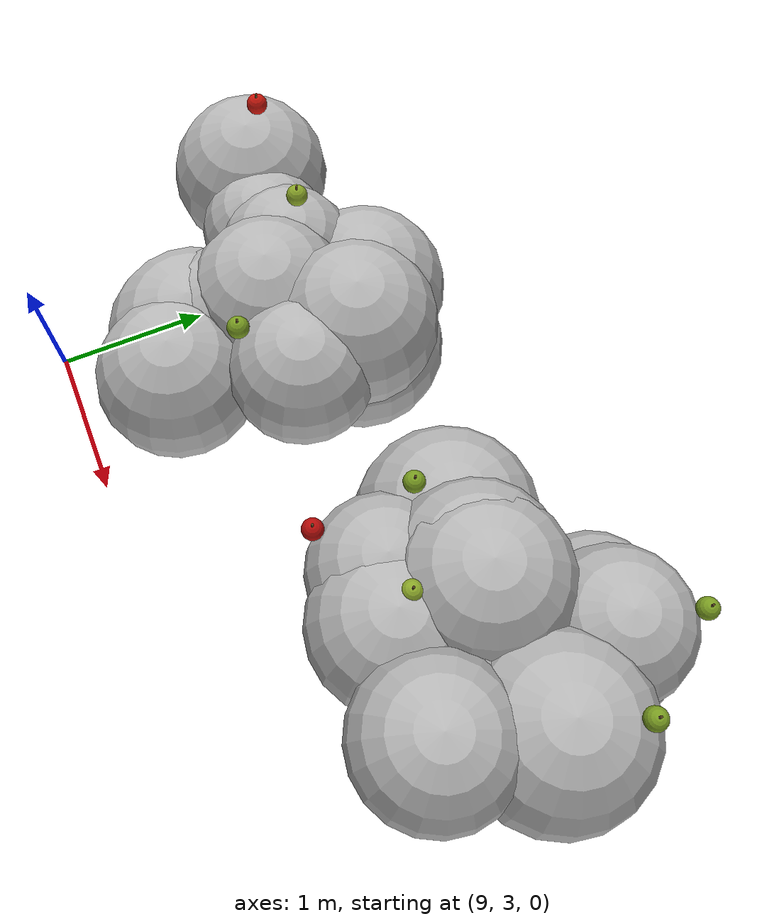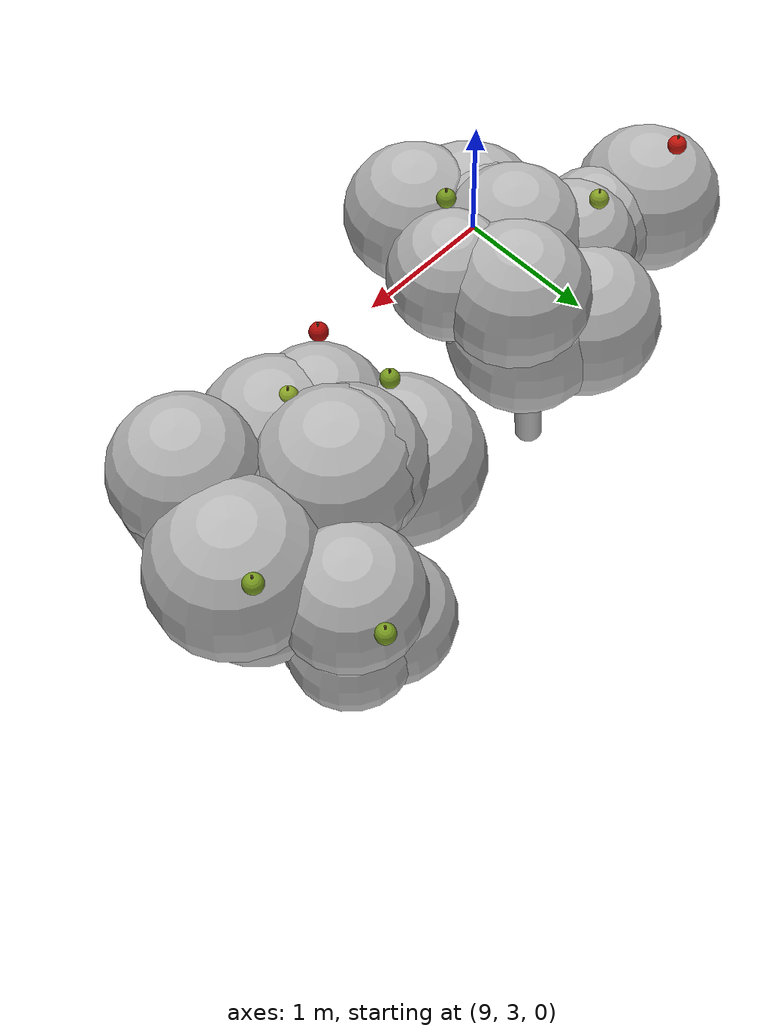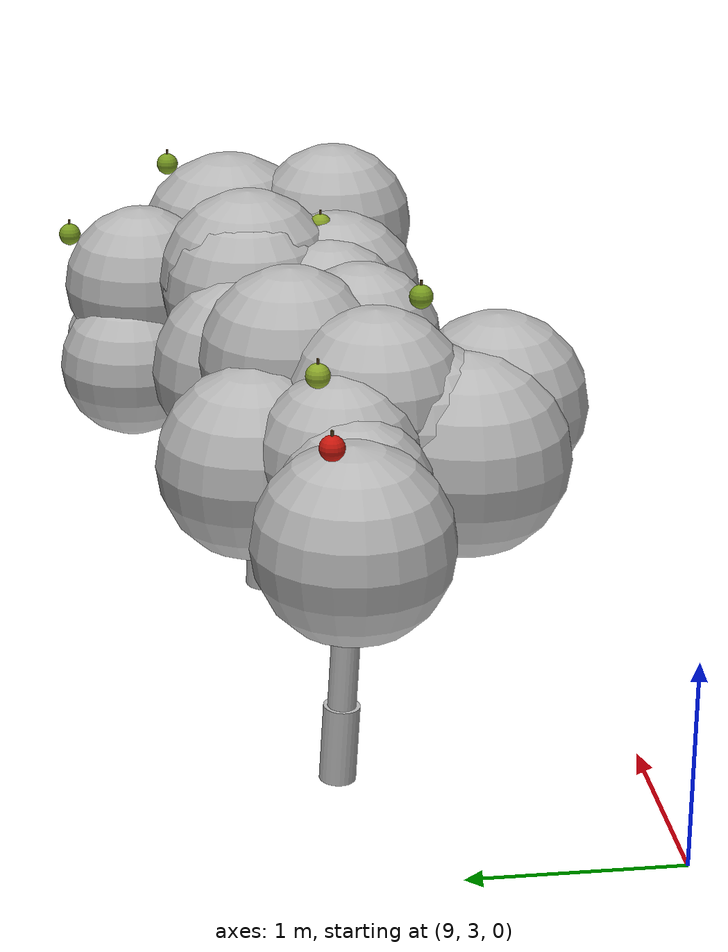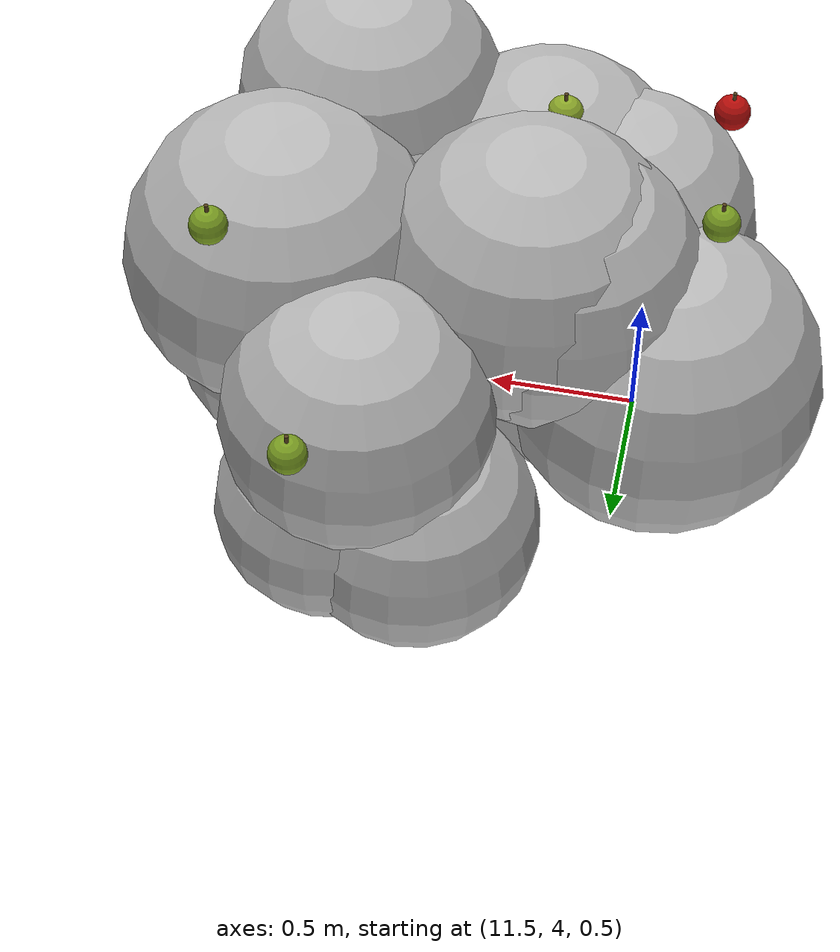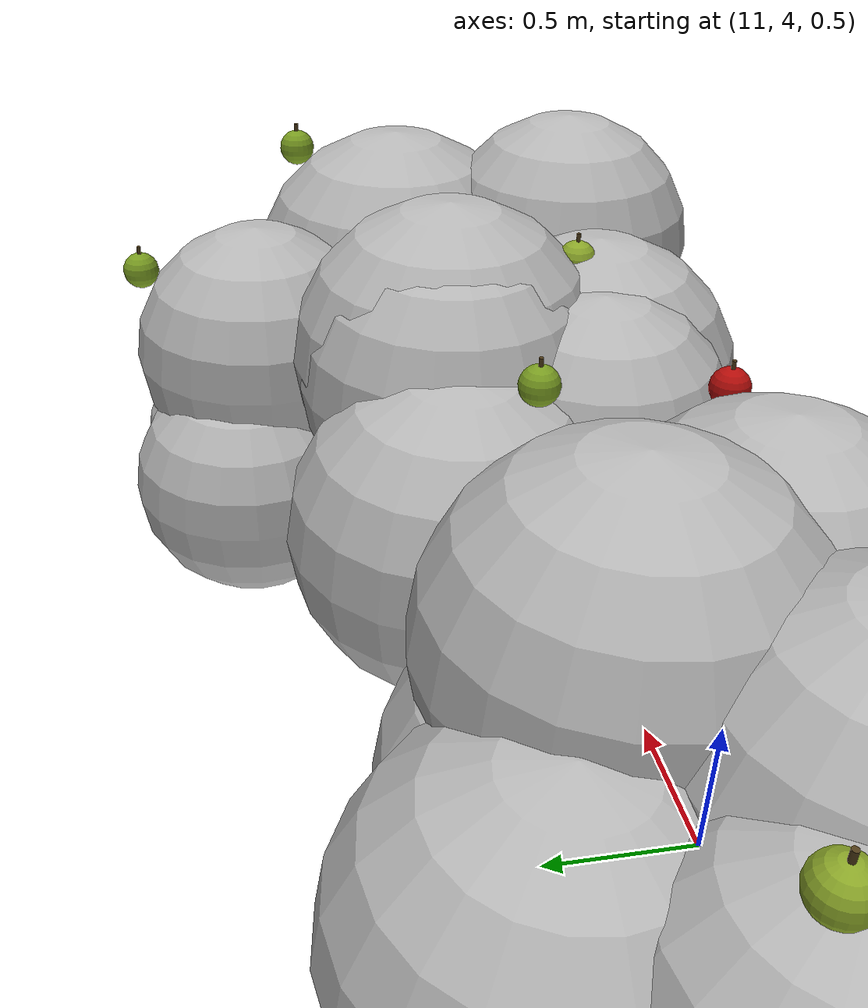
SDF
<sdf version="1.6">
 <world name="default">
  <model name="tree_r4_t12">
   <static>true</static>
   <link name="tree_r4_t12_trunk0">
    <pose>9.9810 4.4279 0.1790 0.0569 0.0055 0</pose>
    <collision name="tree_r4_t12_trunk0_c">
     <geometry><cylinder><radius>0.0867</radius><length>0.3796</length></cylinder></geometry>
    </collision>
    <visual name="tree_r4_t12_trunk0_v">
     <geometry><cylinder><radius>0.0867</radius><length>0.3796</length></cylinder></geometry>
     <material>
      <script>
       <uri>model://orchard/materials/scripts</uri>
       <uri>model://orchard/materials/textures</uri>
       <name>Orchard/Bark</name>
      </script>
     </material>
    </visual>
   </link>
   <link name="tree_r4_t12_trunk1">
    <pose>9.9830 4.4075 0.5371 0.0569 0.0055 0</pose>
    <visual name="tree_r4_t12_trunk1_v">
     <geometry><cylinder><radius>0.0676</radius><length>0.3796</length></cylinder></geometry>
     <material>
      <script>
       <uri>model://orchard/materials/scripts</uri>
       <uri>model://orchard/materials/textures</uri>
       <name>Orchard/Bark</name>
      </script>
     </material>
    </visual>
   </link>
   <link name="tree_r4_t12_trunk2">
    <pose>9.9850 4.3871 0.8952 0.0569 0.0055 0</pose>
    <visual name="tree_r4_t12_trunk2_v">
     <geometry><cylinder><radius>0.0485</radius><length>0.3796</length></cylinder></geometry>
     <material>
      <script>
       <uri>model://orchard/materials/scripts</uri>
       <uri>model://orchard/materials/textures</uri>
       <name>Orchard/Bark</name>
      </script>
     </material>
    </visual>
   </link>
   <link name="tree_r4_t12_br0">
    <pose>10.2596 4.4023 1.3676 0.0000 0.7527 0.0925</pose>
    <visual name="tree_r4_t12_br0_v">
     <geometry><cylinder><radius>0.0308</radius><length>0.8038</length></cylinder></geometry>
     <material>
      <script>
       <uri>model://orchard/materials/scripts</uri>
       <uri>model://orchard/materials/textures</uri>
       <name>Orchard/Bark</name>
      </script>
     </material>
    </visual>
   </link>
   <link name="tree_r4_t12_br1">
    <pose>10.1065 4.5945 1.2824 0.0000 0.8740 1.0651</pose>
    <visual name="tree_r4_t12_br1_v">
     <geometry><cylinder><radius>0.0243</radius><length>0.6485</length></cylinder></geometry>
     <material>
      <script>
       <uri>model://orchard/materials/scripts</uri>
       <uri>model://orchard/materials/textures</uri>
       <name>Orchard/Bark</name>
      </script>
     </material>
    </visual>
   </link>
   <link name="tree_r4_t12_br2">
    <pose>9.6588 4.5346 1.2932 0.0000 1.0283 2.6926</pose>
    <visual name="tree_r4_t12_br2_v">
     <geometry><cylinder><radius>0.0272</radius><length>0.8482</length></cylinder></geometry>
     <material>
      <script>
       <uri>model://orchard/materials/scripts</uri>
       <uri>model://orchard/materials/textures</uri>
       <name>Orchard/Bark</name>
      </script>
     </material>
    </visual>
   </link>
   <link name="tree_r4_t12_br3">
    <pose>9.8046 4.3219 1.2928 0.0000 0.7146 3.4362</pose>
    <visual name="tree_r4_t12_br3_v">
     <geometry><cylinder><radius>0.0324</radius><length>0.5786</length></cylinder></geometry>
     <material>
      <script>
       <uri>model://orchard/materials/scripts</uri>
       <uri>model://orchard/materials/textures</uri>
       <name>Orchard/Bark</name>
      </script>
     </material>
    </visual>
   </link>
   <link name="tree_r4_t12_br4">
    <pose>10.0260 4.1542 1.3610 0.0000 0.6680 4.8900</pose>
    <visual name="tree_r4_t12_br4_v">
     <geometry><cylinder><radius>0.0229</radius><length>0.7305</length></cylinder></geometry>
     <material>
      <script>
       <uri>model://orchard/materials/scripts</uri>
       <uri>model://orchard/materials/textures</uri>
       <name>Orchard/Bark</name>
      </script>
     </material>
    </visual>
   </link>
   <link name="tree_r4_t12_fol0">
    <pose>9.7380 4.4592 1.7288 0 0 0</pose>
    <visual name="tree_r4_t12_fol0_v">
     <geometry><sphere><radius>0.3675</radius></sphere></geometry>
     <material>
      <script>
       <uri>model://orchard/materials/scripts</uri>
       <uri>model://orchard/materials/textures</uri>
       <name>Orchard/Foliage3</name>
      </script>
     </material>
    </visual>
   </link>
   <link name="tree_r4_t12_fol1">
    <pose>10.0296 4.2580 1.8709 0 0 0</pose>
    <visual name="tree_r4_t12_fol1_v">
     <geometry><sphere><radius>0.4154</radius></sphere></geometry>
     <material>
      <script>
       <uri>model://orchard/materials/scripts</uri>
       <uri>model://orchard/materials/textures</uri>
       <name>Orchard/Foliage1</name>
      </script>
     </material>
    </visual>
   </link>
   <link name="tree_r4_t12_fol2">
    <pose>10.0192 4.8026 1.5971 0 0 0</pose>
    <visual name="tree_r4_t12_fol2_v">
     <geometry><sphere><radius>0.4420</radius></sphere></geometry>
     <material>
      <script>
       <uri>model://orchard/materials/scripts</uri>
       <uri>model://orchard/materials/textures</uri>
       <name>Orchard/Foliage0</name>
      </script>
     </material>
    </visual>
   </link>
   <link name="tree_r4_t12_fol3">
    <pose>9.0949 4.4759 1.6015 0 0 0</pose>
    <visual name="tree_r4_t12_fol3_v">
     <geometry><sphere><radius>0.4351</radius></sphere></geometry>
     <material>
      <script>
       <uri>model://orchard/materials/scripts</uri>
       <uri>model://orchard/materials/textures</uri>
       <name>Orchard/Foliage2</name>
      </script>
     </material>
    </visual>
   </link>
   <link name="tree_r4_t12_fol4">
    <pose>10.2332 3.6761 1.7502 0 0 0</pose>
    <visual name="tree_r4_t12_fol4_v">
     <geometry><sphere><radius>0.4189</radius></sphere></geometry>
     <material>
      <script>
       <uri>model://orchard/materials/scripts</uri>
       <uri>model://orchard/materials/textures</uri>
       <name>Orchard/Foliage0</name>
      </script>
     </material>
    </visual>
   </link>
   <link name="tree_r4_t12_fol5">
    <pose>9.9734 3.8534 1.6117 0 0 0</pose>
    <visual name="tree_r4_t12_fol5_v">
     <geometry><sphere><radius>0.4732</radius></sphere></geometry>
     <material>
      <script>
       <uri>model://orchard/materials/scripts</uri>
       <uri>model://orchard/materials/textures</uri>
       <name>Orchard/Foliage3</name>
      </script>
     </material>
    </visual>
   </link>
   <link name="tree_r4_t12_fol6">
    <pose>10.3401 4.6475 1.6008 0 0 0</pose>
    <visual name="tree_r4_t12_fol6_v">
     <geometry><sphere><radius>0.4458</radius></sphere></geometry>
     <material>
      <script>
       <uri>model://orchard/materials/scripts</uri>
       <uri>model://orchard/materials/textures</uri>
       <name>Orchard/Foliage1</name>
      </script>
     </material>
    </visual>
   </link>
   <link name="tree_r4_t12_fol7">
    <pose>10.3750 4.5999 1.9556 0 0 0</pose>
    <visual name="tree_r4_t12_fol7_v">
     <geometry><sphere><radius>0.4192</radius></sphere></geometry>
     <material>
      <script>
       <uri>model://orchard/materials/scripts</uri>
       <uri>model://orchard/materials/textures</uri>
       <name>Orchard/Foliage3</name>
      </script>
     </material>
    </visual>
   </link>
   <link name="tree_r4_t12_fol8">
    <pose>10.2935 4.4285 1.7593 0 0 0</pose>
    <visual name="tree_r4_t12_fol8_v">
     <geometry><sphere><radius>0.4338</radius></sphere></geometry>
     <material>
      <script>
       <uri>model://orchard/materials/scripts</uri>
       <uri>model://orchard/materials/textures</uri>
       <name>Orchard/Foliage2</name>
      </script>
     </material>
    </visual>
   </link>
   <link name="tree_r4_t12_fol9">
    <pose>10.0147 4.0536 1.7189 0 0 0</pose>
    <visual name="tree_r4_t12_fol9_v">
     <geometry><sphere><radius>0.4104</radius></sphere></geometry>
     <material>
      <script>
       <uri>model://orchard/materials/scripts</uri>
       <uri>model://orchard/materials/textures</uri>
       <name>Orchard/Foliage0</name>
      </script>
     </material>
    </visual>
   </link>
   <link name="tree_r4_t12_fol10">
    <pose>9.5019 4.4159 1.6421 0 0 0</pose>
    <visual name="tree_r4_t12_fol10_v">
     <geometry><sphere><radius>0.3462</radius></sphere></geometry>
     <material>
      <script>
       <uri>model://orchard/materials/scripts</uri>
       <uri>model://orchard/materials/textures</uri>
       <name>Orchard/Foliage1</name>
      </script>
     </material>
    </visual>
   </link>
   <link name="tree_r4_t12_fol11">
    <pose>10.5240 4.2586 1.9586 0 0 0</pose>
    <visual name="tree_r4_t12_fol11_v">
     <geometry><sphere><radius>0.3690</radius></sphere></geometry>
     <material>
      <script>
       <uri>model://orchard/materials/scripts</uri>
       <uri>model://orchard/materials/textures</uri>
       <name>Orchard/Foliage3</name>
      </script>
     </material>
    </visual>
   </link>
   <link name="tree_r4_t12_ap0">
    <pose>10.3248 4.0146 2.2342 0 0 0</pose>
    <visual name="tree_r4_t12_ap0_v">
     <geometry><sphere><radius>0.0550</radius></sphere></geometry>
     <material>
      <ambient>0.192 0.248 0.052 1.00</ambient>
      <diffuse>0.480 0.620 0.130 1.00</diffuse>
      <specular>0.45 0.35 0.32 1</specular>
     </material>
    </visual>
   </link>
   <link name="tree_r4_t12_st0">
    <pose>10.3248 4.0146 2.2865 0 0 0</pose>
    <visual name="tree_r4_t12_st0_v">
     <geometry><cylinder><radius>0.0060</radius><length>0.0500</length></cylinder></geometry>
     <material><ambient>0.128 0.096 0.040 1.00</ambient><diffuse>0.320 0.240 0.100 1.00</diffuse></material>
    </visual>
   </link>
   <link name="tree_r4_t12_ap1">
    <pose>9.0103 4.5742 2.0683 0 0 0</pose>
    <visual name="tree_r4_t12_ap1_v">
     <geometry><sphere><radius>0.0550</radius></sphere></geometry>
     <material>
      <ambient>0.320 0.036 0.020 1.00</ambient>
      <diffuse>0.800 0.090 0.050 1.00</diffuse>
      <specular>0.45 0.35 0.32 1</specular>
     </material>
    </visual>
   </link>
   <link name="tree_r4_t12_st1">
    <pose>9.0103 4.5742 2.1206 0 0 0</pose>
    <visual name="tree_r4_t12_st1_v">
     <geometry><cylinder><radius>0.0060</radius><length>0.0500</length></cylinder></geometry>
     <material><ambient>0.128 0.096 0.040 1.00</ambient><diffuse>0.320 0.240 0.100 1.00</diffuse></material>
    </visual>
   </link>
   <link name="tree_r4_t12_ap2">
    <pose>9.6698 4.5569 2.1284 0 0 0</pose>
    <visual name="tree_r4_t12_ap2_v">
     <geometry><sphere><radius>0.0550</radius></sphere></geometry>
     <material>
      <ambient>0.220 0.264 0.064 1.00</ambient>
      <diffuse>0.550 0.660 0.160 1.00</diffuse>
      <specular>0.45 0.35 0.32 1</specular>
     </material>
    </visual>
   </link>
   <link name="tree_r4_t12_st2">
    <pose>9.6698 4.5569 2.1807 0 0 0</pose>
    <visual name="tree_r4_t12_st2_v">
     <geometry><cylinder><radius>0.0060</radius><length>0.0500</length></cylinder></geometry>
     <material><ambient>0.128 0.096 0.040 1.00</ambient><diffuse>0.320 0.240 0.100 1.00</diffuse></material>
    </visual>
   </link>
  </model>
  <model name="tree_r4_t13">
   <static>true</static>
   <link name="tree_r4_t13_trunk0">
    <pose>12.1223 4.5745 0.1630 0.0480 -0.0464 0</pose>
    <collision name="tree_r4_t13_trunk0_c">
     <geometry><cylinder><radius>0.0963</radius><length>0.3457</length></cylinder></geometry>
    </collision>
    <visual name="tree_r4_t13_trunk0_v">
     <geometry><cylinder><radius>0.0963</radius><length>0.3457</length></cylinder></geometry>
     <material>
      <script>
       <uri>model://orchard/materials/scripts</uri>
       <uri>model://orchard/materials/textures</uri>
       <name>Orchard/Bark</name>
      </script>
     </material>
    </visual>
   </link>
   <link name="tree_r4_t13_trunk1">
    <pose>12.1072 4.5588 0.4891 0.0480 -0.0464 0</pose>
    <visual name="tree_r4_t13_trunk1_v">
     <geometry><cylinder><radius>0.0751</radius><length>0.3457</length></cylinder></geometry>
     <material>
      <script>
       <uri>model://orchard/materials/scripts</uri>
       <uri>model://orchard/materials/textures</uri>
       <name>Orchard/Bark</name>
      </script>
     </material>
    </visual>
   </link>
   <link name="tree_r4_t13_trunk2">
    <pose>12.0920 4.5432 0.8152 0.0480 -0.0464 0</pose>
    <visual name="tree_r4_t13_trunk2_v">
     <geometry><cylinder><radius>0.0539</radius><length>0.3457</length></cylinder></geometry>
     <material>
      <script>
       <uri>model://orchard/materials/scripts</uri>
       <uri>model://orchard/materials/textures</uri>
       <name>Orchard/Bark</name>
      </script>
     </material>
    </visual>
   </link>
   <link name="tree_r4_t13_br0">
    <pose>12.3967 4.6429 1.1568 0.0000 1.0753 0.3319</pose>
    <visual name="tree_r4_t13_br0_v">
     <geometry><cylinder><radius>0.0287</radius><length>0.7508</length></cylinder></geometry>
     <material>
      <script>
       <uri>model://orchard/materials/scripts</uri>
       <uri>model://orchard/materials/textures</uri>
       <name>Orchard/Bark</name>
      </script>
     </material>
    </visual>
   </link>
   <link name="tree_r4_t13_br1">
    <pose>12.0921 4.8104 1.1818 0.0000 0.9338 1.5431</pose>
    <visual name="tree_r4_t13_br1_v">
     <geometry><cylinder><radius>0.0356</radius><length>0.6845</length></cylinder></geometry>
     <material>
      <script>
       <uri>model://orchard/materials/scripts</uri>
       <uri>model://orchard/materials/textures</uri>
       <name>Orchard/Bark</name>
      </script>
     </material>
    </visual>
   </link>
   <link name="tree_r4_t13_br2">
    <pose>11.8709 4.6811 1.2906 0.0000 0.6914 2.5428</pose>
    <visual name="tree_r4_t13_br2_v">
     <geometry><cylinder><radius>0.0311</radius><length>0.8109</length></cylinder></geometry>
     <material>
      <script>
       <uri>model://orchard/materials/scripts</uri>
       <uri>model://orchard/materials/textures</uri>
       <name>Orchard/Bark</name>
      </script>
     </material>
    </visual>
   </link>
   <link name="tree_r4_t13_br3">
    <pose>11.9280 4.4111 1.2552 0.0000 0.6249 3.8129</pose>
    <visual name="tree_r4_t13_br3_v">
     <geometry><cylinder><radius>0.0244</radius><length>0.6829</length></cylinder></geometry>
     <material>
      <script>
       <uri>model://orchard/materials/scripts</uri>
       <uri>model://orchard/materials/textures</uri>
       <name>Orchard/Bark</name>
      </script>
     </material>
    </visual>
   </link>
   <link name="tree_r4_t13_br4">
    <pose>12.1772 4.3072 1.3146 0.0000 0.6321 5.0986</pose>
    <visual name="tree_r4_t13_br4_v">
     <geometry><cylinder><radius>0.0234</radius><length>0.8337</length></cylinder></geometry>
     <material>
      <script>
       <uri>model://orchard/materials/scripts</uri>
       <uri>model://orchard/materials/textures</uri>
       <name>Orchard/Bark</name>
      </script>
     </material>
    </visual>
   </link>
   <link name="tree_r4_t13_fol0">
    <pose>11.3801 4.7070 1.5240 0 0 0</pose>
    <visual name="tree_r4_t13_fol0_v">
     <geometry><sphere><radius>0.4771</radius></sphere></geometry>
     <material>
      <script>
       <uri>model://orchard/materials/scripts</uri>
       <uri>model://orchard/materials/textures</uri>
       <name>Orchard/Foliage3</name>
      </script>
     </material>
    </visual>
   </link>
   <link name="tree_r4_t13_fol1">
    <pose>11.8172 4.2190 1.7320 0 0 0</pose>
    <visual name="tree_r4_t13_fol1_v">
     <geometry><sphere><radius>0.4317</radius></sphere></geometry>
     <material>
      <script>
       <uri>model://orchard/materials/scripts</uri>
       <uri>model://orchard/materials/textures</uri>
       <name>Orchard/Foliage1</name>
      </script>
     </material>
    </visual>
   </link>
   <link name="tree_r4_t13_fol2">
    <pose>12.4098 4.7211 1.5705 0 0 0</pose>
    <visual name="tree_r4_t13_fol2_v">
     <geometry><sphere><radius>0.4529</radius></sphere></geometry>
     <material>
      <script>
       <uri>model://orchard/materials/scripts</uri>
       <uri>model://orchard/materials/textures</uri>
       <name>Orchard/Foliage2</name>
      </script>
     </material>
    </visual>
   </link>
   <link name="tree_r4_t13_fol3">
    <pose>12.3717 4.1699 1.9479 0 0 0</pose>
    <visual name="tree_r4_t13_fol3_v">
     <geometry><sphere><radius>0.4073</radius></sphere></geometry>
     <material>
      <script>
       <uri>model://orchard/materials/scripts</uri>
       <uri>model://orchard/materials/textures</uri>
       <name>Orchard/Foliage1</name>
      </script>
     </material>
    </visual>
   </link>
   <link name="tree_r4_t13_fol4">
    <pose>11.6114 4.5118 1.5271 0 0 0</pose>
    <visual name="tree_r4_t13_fol4_v">
     <geometry><sphere><radius>0.4965</radius></sphere></geometry>
     <material>
      <script>
       <uri>model://orchard/materials/scripts</uri>
       <uri>model://orchard/materials/textures</uri>
       <name>Orchard/Foliage2</name>
      </script>
     </material>
    </visual>
   </link>
   <link name="tree_r4_t13_fol5">
    <pose>11.7136 4.6704 1.8139 0 0 0</pose>
    <visual name="tree_r4_t13_fol5_v">
     <geometry><sphere><radius>0.4346</radius></sphere></geometry>
     <material>
      <script>
       <uri>model://orchard/materials/scripts</uri>
       <uri>model://orchard/materials/textures</uri>
       <name>Orchard/Foliage0</name>
      </script>
     </material>
    </visual>
   </link>
   <link name="tree_r4_t13_fol6">
    <pose>11.7961 4.6641 1.8527 0 0 0</pose>
    <visual name="tree_r4_t13_fol6_v">
     <geometry><sphere><radius>0.4510</radius></sphere></geometry>
     <material>
      <script>
       <uri>model://orchard/materials/scripts</uri>
       <uri>model://orchard/materials/textures</uri>
       <name>Orchard/Foliage0</name>
      </script>
     </material>
    </visual>
   </link>
   <link name="tree_r4_t13_fol7">
    <pose>12.0170 5.2550 1.3394 0 0 0</pose>
    <visual name="tree_r4_t13_fol7_v">
     <geometry><sphere><radius>0.3696</radius></sphere></geometry>
     <material>
      <script>
       <uri>model://orchard/materials/scripts</uri>
       <uri>model://orchard/materials/textures</uri>
       <name>Orchard/Foliage3</name>
      </script>
     </material>
    </visual>
   </link>
   <link name="tree_r4_t13_fol8">
    <pose>12.5173 4.7032 1.8096 0 0 0</pose>
    <visual name="tree_r4_t13_fol8_v">
     <geometry><sphere><radius>0.4754</radius></sphere></geometry>
     <material>
      <script>
       <uri>model://orchard/materials/scripts</uri>
       <uri>model://orchard/materials/textures</uri>
       <name>Orchard/Foliage0</name>
      </script>
     </material>
    </visual>
   </link>
   <link name="tree_r4_t13_fol9">
    <pose>12.3408 4.2296 1.7909 0 0 0</pose>
    <visual name="tree_r4_t13_fol9_v">
     <geometry><sphere><radius>0.4270</radius></sphere></geometry>
     <material>
      <script>
       <uri>model://orchard/materials/scripts</uri>
       <uri>model://orchard/materials/textures</uri>
       <name>Orchard/Foliage1</name>
      </script>
     </material>
    </visual>
   </link>
   <link name="tree_r4_t13_fol10">
    <pose>12.1953 5.1855 1.7142 0 0 0</pose>
    <visual name="tree_r4_t13_fol10_v">
     <geometry><sphere><radius>0.3968</radius></sphere></geometry>
     <material>
      <script>
       <uri>model://orchard/materials/scripts</uri>
       <uri>model://orchard/materials/textures</uri>
       <name>Orchard/Foliage0</name>
      </script>
     </material>
    </visual>
   </link>
   <link name="tree_r4_t13_fol11">
    <pose>11.5616 4.2796 1.7123 0 0 0</pose>
    <visual name="tree_r4_t13_fol11_v">
     <geometry><sphere><radius>0.3928</radius></sphere></geometry>
     <material>
      <script>
       <uri>model://orchard/materials/scripts</uri>
       <uri>model://orchard/materials/textures</uri>
       <name>Orchard/Foliage0</name>
      </script>
     </material>
    </visual>
   </link>
   <link name="tree_r4_t13_fol12">
    <pose>12.2510 4.5732 1.6121 0 0 0</pose>
    <visual name="tree_r4_t13_fol12_v">
     <geometry><sphere><radius>0.3708</radius></sphere></geometry>
     <material>
      <script>
       <uri>model://orchard/materials/scripts</uri>
       <uri>model://orchard/materials/textures</uri>
       <name>Orchard/Foliage2</name>
      </script>
     </material>
    </visual>
   </link>
   <link name="tree_r4_t13_fol13">
    <pose>12.2695 5.2463 1.3604 0 0 0</pose>
    <visual name="tree_r4_t13_fol13_v">
     <geometry><sphere><radius>0.3422</radius></sphere></geometry>
     <material>
      <script>
       <uri>model://orchard/materials/scripts</uri>
       <uri>model://orchard/materials/textures</uri>
       <name>Orchard/Foliage3</name>
      </script>
     </material>
    </visual>
   </link>
   <link name="tree_r4_t13_fol14">
    <pose>11.9593 4.2558 1.6131 0 0 0</pose>
    <visual name="tree_r4_t13_fol14_v">
     <geometry><sphere><radius>0.3689</radius></sphere></geometry>
     <material>
      <script>
       <uri>model://orchard/materials/scripts</uri>
       <uri>model://orchard/materials/textures</uri>
       <name>Orchard/Foliage3</name>
      </script>
     </material>
    </visual>
   </link>
   <link name="tree_r4_t13_fol15">
    <pose>12.2813 4.2390 1.8135 0 0 0</pose>
    <visual name="tree_r4_t13_fol15_v">
     <geometry><sphere><radius>0.3423</radius></sphere></geometry>
     <material>
      <script>
       <uri>model://orchard/materials/scripts</uri>
       <uri>model://orchard/materials/textures</uri>
       <name>Orchard/Foliage3</name>
      </script>
     </material>
    </visual>
   </link>
   <link name="tree_r4_t13_ap0">
    <pose>12.2988 5.5468 1.9550 0 0 0</pose>
    <visual name="tree_r4_t13_ap0_v">
     <geometry><sphere><radius>0.0550</radius></sphere></geometry>
     <material>
      <ambient>0.192 0.248 0.052 1.00</ambient>
      <diffuse>0.480 0.620 0.130 1.00</diffuse>
      <specular>0.45 0.35 0.32 1</specular>
     </material>
    </visual>
   </link>
   <link name="tree_r4_t13_st0">
    <pose>12.2988 5.5468 2.0072 0 0 0</pose>
    <visual name="tree_r4_t13_st0_v">
     <geometry><cylinder><radius>0.0060</radius><length>0.0500</length></cylinder></geometry>
     <material><ambient>0.128 0.096 0.040 1.00</ambient><diffuse>0.320 0.240 0.100 1.00</diffuse></material>
    </visual>
   </link>
   <link name="tree_r4_t13_ap1">
    <pose>11.7673 4.3047 2.1266 0 0 0</pose>
    <visual name="tree_r4_t13_ap1_v">
     <geometry><sphere><radius>0.0550</radius></sphere></geometry>
     <material>
      <ambient>0.220 0.264 0.064 1.00</ambient>
      <diffuse>0.550 0.660 0.160 1.00</diffuse>
      <specular>0.45 0.35 0.32 1</specular>
     </material>
    </visual>
   </link>
   <link name="tree_r4_t13_st1">
    <pose>11.7673 4.3047 2.1788 0 0 0</pose>
    <visual name="tree_r4_t13_st1_v">
     <geometry><cylinder><radius>0.0060</radius><length>0.0500</length></cylinder></geometry>
     <material><ambient>0.128 0.096 0.040 1.00</ambient><diffuse>0.320 0.240 0.100 1.00</diffuse></material>
    </visual>
   </link>
   <link name="tree_r4_t13_ap2">
    <pose>12.6371 5.0164 2.2134 0 0 0</pose>
    <visual name="tree_r4_t13_ap2_v">
     <geometry><sphere><radius>0.0550</radius></sphere></geometry>
     <material>
      <ambient>0.192 0.248 0.052 1.00</ambient>
      <diffuse>0.480 0.620 0.130 1.00</diffuse>
      <specular>0.45 0.35 0.32 1</specular>
     </material>
    </visual>
   </link>
   <link name="tree_r4_t13_st2">
    <pose>12.6371 5.0164 2.2656 0 0 0</pose>
    <visual name="tree_r4_t13_st2_v">
     <geometry><cylinder><radius>0.0060</radius><length>0.0500</length></cylinder></geometry>
     <material><ambient>0.128 0.096 0.040 1.00</ambient><diffuse>0.320 0.240 0.100 1.00</diffuse></material>
    </visual>
   </link>
   <link name="tree_r4_t13_ap3">
    <pose>11.2979 4.0133 1.9471 0 0 0</pose>
    <visual name="tree_r4_t13_ap3_v">
     <geometry><sphere><radius>0.0550</radius></sphere></geometry>
     <material>
      <ambient>0.288 0.020 0.016 1.00</ambient>
      <diffuse>0.720 0.050 0.040 1.00</diffuse>
      <specular>0.45 0.35 0.32 1</specular>
     </material>
    </visual>
   </link>
   <link name="tree_r4_t13_st3">
    <pose>11.2979 4.0133 1.9993 0 0 0</pose>
    <visual name="tree_r4_t13_st3_v">
     <geometry><cylinder><radius>0.0060</radius><length>0.0500</length></cylinder></geometry>
     <material><ambient>0.128 0.096 0.040 1.00</ambient><diffuse>0.320 0.240 0.100 1.00</diffuse></material>
    </visual>
   </link>
   <link name="tree_r4_t13_ap4">
    <pose>11.2731 4.5346 2.0099 0 0 0</pose>
    <visual name="tree_r4_t13_ap4_v">
     <geometry><sphere><radius>0.0550</radius></sphere></geometry>
     <material>
      <ambient>0.192 0.248 0.052 1.00</ambient>
      <diffuse>0.480 0.620 0.130 1.00</diffuse>
      <specular>0.45 0.35 0.32 1</specular>
     </material>
    </visual>
   </link>
   <link name="tree_r4_t13_st4">
    <pose>11.2731 4.5346 2.0622 0 0 0</pose>
    <visual name="tree_r4_t13_st4_v">
     <geometry><cylinder><radius>0.0060</radius><length>0.0500</length></cylinder></geometry>
     <material><ambient>0.128 0.096 0.040 1.00</ambient><diffuse>0.320 0.240 0.100 1.00</diffuse></material>
    </visual>
   </link>
  </model>
 </world>
</sdf>
